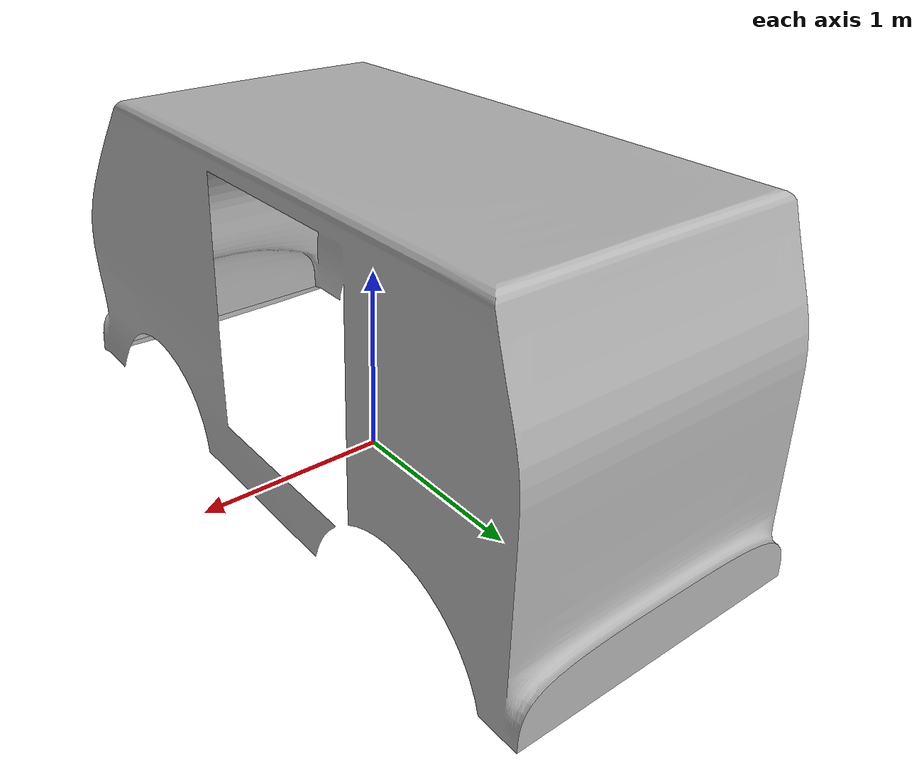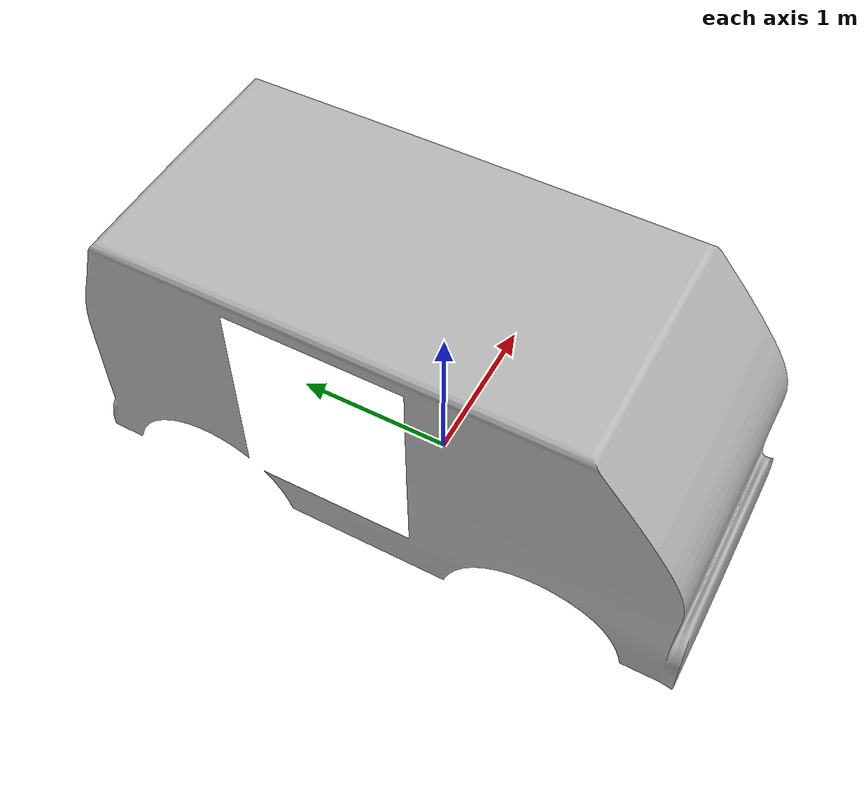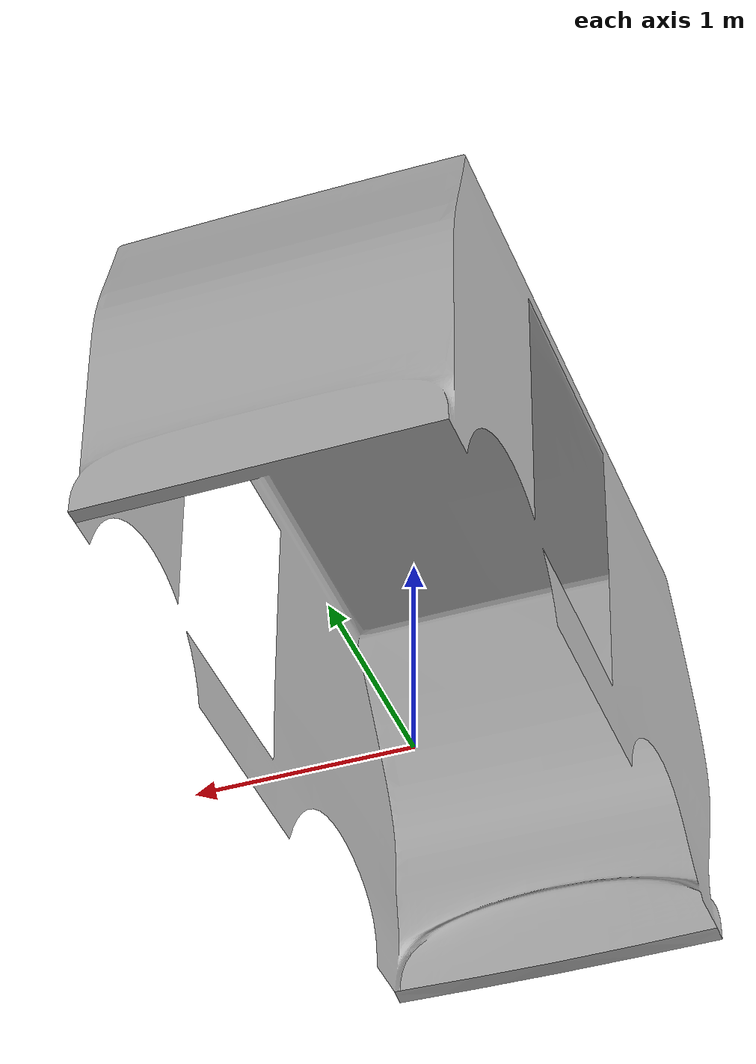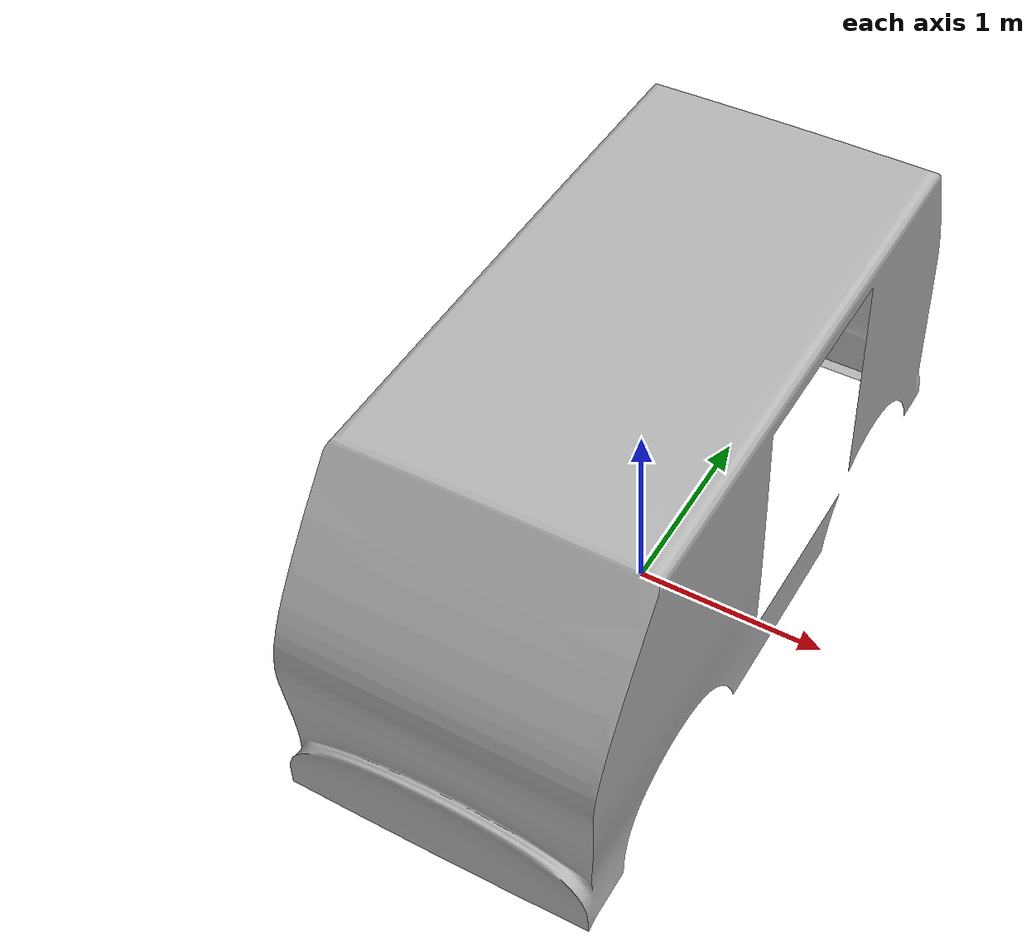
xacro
<?xml version="1.0" ?>
<robot name="arcbody" xmlns:xacro="http://www.ros.org/wiki/xacro">

<xacro:include filename="$(find arcbody_description)/urdf/materials.xacro" />
<xacro:include filename="$(find arcbody_description)/urdf/arcbody.trans" />
<xacro:include filename="$(find arcbody_description)/urdf/arcbody.gazebo" />
<link name="base_link">
  <inertial>
    <origin xyz="0.0 0.0 0.0" rpy="0 0 0"/>
    <mass value="0.0"/>
    <inertia ixx="0.0" iyy="0.0" izz="0.0" ixy="0.0" iyz="0.0" ixz="0.0"/>
  </inertial>
  <visual>
    <origin xyz="0 0 0" rpy="0 0 0"/>
    <geometry>
      <mesh filename="package://arcbody_description/meshes/base_link.stl" scale="0.001 0.001 0.001"/>
    </geometry>
    <material name="silver"/>
  </visual>
  <collision>
    <origin xyz="0 0 0" rpy="0 0 0"/>
    <geometry>
      <mesh filename="package://arcbody_description/meshes/base_link.stl" scale="0.001 0.001 0.001"/>
    </geometry>
  </collision>
</link>

</robot>

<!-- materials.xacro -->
<robot name="arcbody" xmlns:xacro="http://www.ros.org/wiki/xacro" >

<material name="silver">
  <color rgba="0.700 0.700 0.700 1.000"/>
</material>

</robot>

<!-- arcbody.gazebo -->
<robot name="arcbody" xmlns:xacro="http://www.ros.org/wiki/xacro" >

<xacro:property name="body_color" value="Gazebo/Silver" />

<gazebo>
  <plugin name="control" filename="libgazebo_ros_control.so"/>
</gazebo>
<gazebo reference="base_link">
  <material>${body_color}</material>
  <mu1>0.2</mu1>
  <mu2>0.2</mu2>
  <selfCollide>true</selfCollide>
  <gravity>true</gravity>
</gazebo>

</robot>
